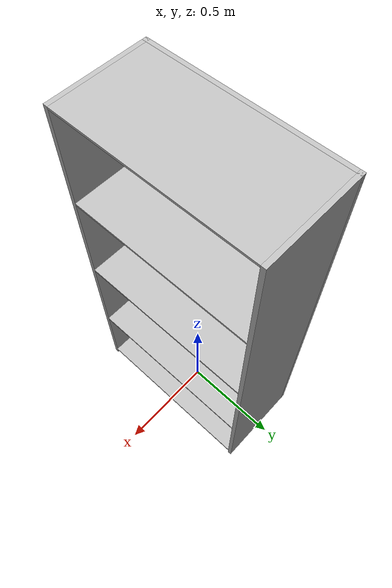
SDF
<?xml version="1.0" ?>
<sdf version="1.6">
  <model name="rwc2023/metal_cabinet">
    <static>true</static>
    <link name="1_link">
      <collision name="1_col">
        <geometry>
          <box>
            <size>0.45 0.02 1.835</size>
          </box>
        </geometry>
      </collision>
      <visual name="1_vis">
        <geometry>
          <box>
            <size>0.45 0.02 1.835</size>
          </box>
        </geometry>
      </visual>
      <pose>0.0 -0.44 0.9175 0 0 0</pose>
    </link>
    <link name="2_link">
      <collision name="2_col">
        <geometry>
          <box>
            <size>0.45 0.02 1.835</size>
          </box>
        </geometry>
      </collision>
      <visual name="2_vis">
        <geometry>
          <box>
            <size>0.45 0.02 1.835</size>
          </box>
        </geometry>
      </visual>
      <pose>0.0 0.44 0.9175 0 0 0</pose>
    </link>
    <link name="3_link">
      <collision name="3_col">
        <geometry>
          <box>
            <size>0.02 0.9 1.835</size>
          </box>
        </geometry>
      </collision>
      <visual name="3_vis">
        <geometry>
          <box>
            <size>0.02 0.9 1.835</size>
          </box>
        </geometry>
      </visual>
      <pose>-0.215 0.0 0.9175 0 0 0</pose>
    </link>
    <link name="5_link">
      <collision name="5_col">
        <geometry>
          <box>
            <size>0.43 0.86 0.01</size>
          </box>
        </geometry>
      </collision>
      <visual name="5_vis">
        <geometry>
          <box>
            <size>0.43 0.86 0.01</size>
          </box>
        </geometry>
      </visual>
      <pose>0.01 0.0 0.035 0 0 0</pose>
    </link>
    <link name="6_link">
      <collision name="6_col">
        <geometry>
          <box>
            <size>0.43 0.86 0.01</size>
          </box>
        </geometry>
      </collision>
      <visual name="6_vis">
        <geometry>
          <box>
            <size>0.43 0.86 0.01</size>
          </box>
        </geometry>
      </visual>
      <pose>0.01 0.0 0.42 0 0 0</pose>
    </link>
    <link name="7_link">
      <collision name="7_col">
        <geometry>
          <box>
            <size>0.43 0.86 0.01</size>
          </box>
        </geometry>
      </collision>
      <visual name="7_vis">
        <geometry>
          <box>
            <size>0.43 0.86 0.01</size>
          </box>
        </geometry>
      </visual>
      <pose>0.01 0.0 0.89 0 0 0</pose>
    </link>
    <link name="8_link">
      <collision name="8_col">
        <geometry>
          <box>
            <size>0.43 0.86 0.01</size>
          </box>
        </geometry>
      </collision>
      <visual name="8_vis">
        <geometry>
          <box>
            <size>0.43 0.86 0.01</size>
          </box>
        </geometry>
      </visual>
      <pose>0.01 0.0 1.36 0 0 0</pose>
    </link>
    <link name="9_link">
      <collision name="9_col">
        <geometry>
          <box>
            <size>0.43 0.86 0.01</size>
          </box>
        </geometry>
      </collision>
      <visual name="9_vis">
        <geometry>
          <box>
            <size>0.43 0.86 0.01</size>
          </box>
        </geometry>
      </visual>
      <pose>0.01 0.0 1.83 0 0 0</pose>
    </link>
    <link name="in_front_of">
      <virtual_volume name="in_front_of_vv">
        <geometry>
          <box>
            <size>0.2 0.7 0.01</size>
          </box>
        </geometry>
        <pose>0.725 0.0 0.005 0 0 0</pose>
      </virtual_volume>
    </link>
    <link name="shelf1">
      <virtual_volume name="shelf1_vv">
        <geometry>
          <box>
            <size>0.41 0.8 0.3</size>
          </box>
        </geometry>
        <pose>0.01 0.0 0.195 0 0 0</pose>
      </virtual_volume>
    </link>
    <link name="shelf2">
      <virtual_volume name="shelf2_vv">
        <geometry>
          <box>
            <size>0.41 0.8 0.35</size>
          </box>
        </geometry>
        <pose>0.01 0.0 0.62 0 0 0</pose>
      </virtual_volume>
    </link>
    <link name="shelf3">
      <virtual_volume name="shelf3_vv">
        <geometry>
          <box>
            <size>0.41 0.8 0.35</size>
          </box>
        </geometry>
        <pose>0.01 0.0 1.09 0 0 0</pose>
      </virtual_volume>
    </link>
    <link name="shelf4">
      <virtual_volume name="shelf4_vv">
        <geometry>
          <box>
            <size>0.41 0.8 0.35</size>
          </box>
        </geometry>
        <pose>0.01 0.0 1.56 0 0 0</pose>
      </virtual_volume>
    </link>
    <link name="shelf5">
      <virtual_volume name="shelf5_vv">
        <geometry>
          <box>
            <size>0.41 0.8 0.35</size>
          </box>
        </geometry>
        <pose>0.01 0.0 2.03 0 0 0</pose>
      </virtual_volume>
    </link>
  </model>
</sdf>
